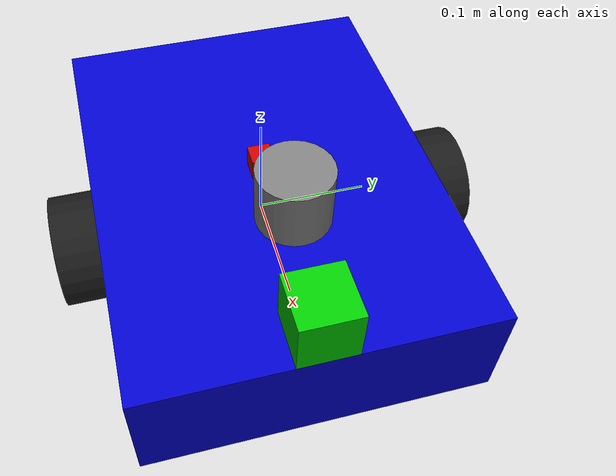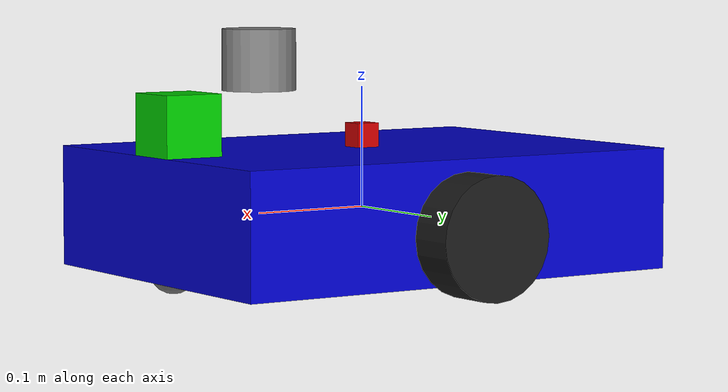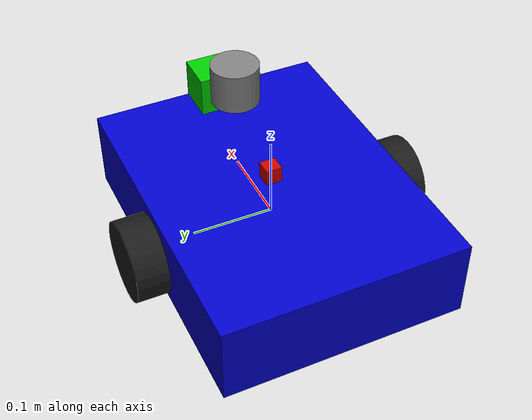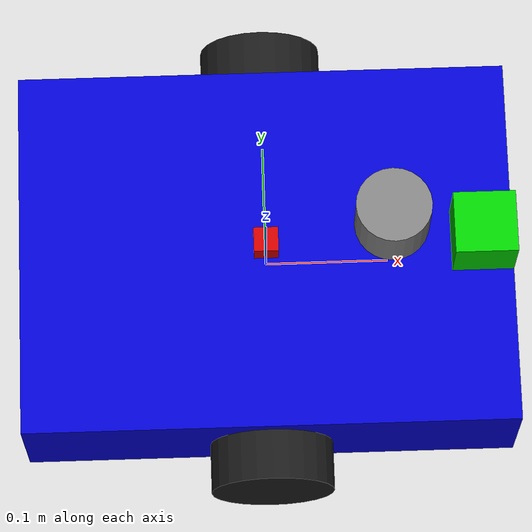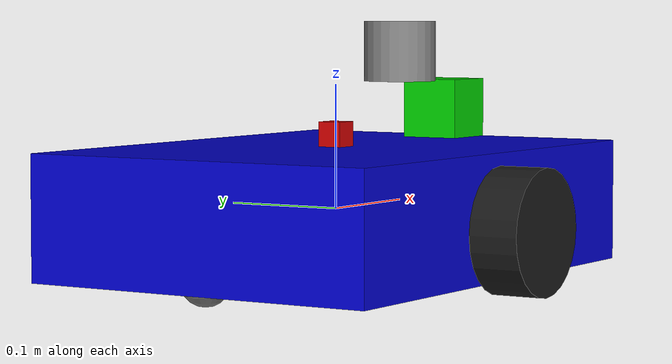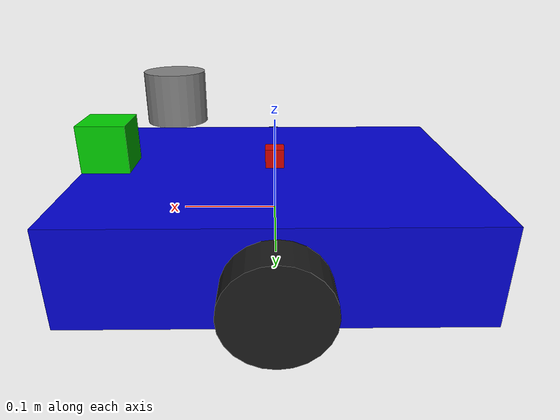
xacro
<?xml version="1.0"?>
<robot xmlns:xacro="http://www.ros.org/wiki/xacro" name="diff_drive_robot">

    <!-- Constants -->
    <xacro:property name="M_PI" value="3.1415926535897931" />
    <xacro:property name="base_width" value="0.3"/>
    <xacro:property name="base_length" value="0.4"/>
    <xacro:property name="base_height" value="0.1"/>
    <xacro:property name="wheel_radius" value="0.05"/>
    <xacro:property name="wheel_width" value="0.04"/>
    <xacro:property name="caster_radius" value="0.02"/>
    <xacro:property name="base_lift" value="0.01"/>
    <xacro:property name="camera_link_size" value="0.05"/>
    <xacro:property name="imu_link_size" value="0.02"/>

    <!-- Base Link -->
    <link name="base_link">
        <visual>
            <geometry>
                <box size="${base_length} ${base_width} ${base_height}"/>
            </geometry>
            <material name="blue">
                <color rgba="0.0 0.0 0.8 1.0"/>
            </material>
        </visual>
        <collision>
            <geometry>
                <box size="${base_length} ${base_width} ${base_height}"/>
            </geometry>
        </collision>
        <inertial>
            <origin xyz="0 0 0" rpy="0 0 0"/>
            <mass value="5.0"/>
            <inertia ixx="0.1" ixy="0.0" ixz="0.0" iyy="0.1" iyz="0.0" izz="0.1"/>
        </inertial>
    </link>

    <!-- IMU Link -->
    <link name="imu_link">
        <visual>
            <geometry>
                <box size="${imu_link_size} ${imu_link_size} ${imu_link_size}"/>
            </geometry>
            <material name="red">
                 <color rgba="0.8 0.0 0.0 1.0"/>
            </material>
        </visual>
         <collision>
            <geometry>
                <box size="${imu_link_size} ${imu_link_size} ${imu_link_size}"/>
            </geometry>
        </collision>
         <inertial>
            <mass value="0.01"/>
            <inertia ixx="1e-6" ixy="0.0" ixz="0.0" iyy="1e-6" iyz="0.0" izz="1e-6"/>
        </inertial>
    </link>

    <joint name="imu_joint" type="fixed">
        <parent link="base_link"/>
        <child link="imu_link"/>
        <origin xyz="0 0 ${base_height/2 + imu_link_size/2}" rpy="0 0 0"/>
    </joint>

    <!-- Camera Link -->
    <link name="camera_link">
        <visual>
            <geometry>
                <box size="${camera_link_size} ${camera_link_size} ${camera_link_size}"/>
            </geometry>
            <material name="green">
                <color rgba="0.0 0.8 0.0 1.0"/>
            </material>
        </visual>
        <collision>
            <geometry>
                <box size="${camera_link_size} ${camera_link_size} ${camera_link_size}"/>
            </geometry>
        </collision>
        <inertial>
             <mass value="0.1"/>
             <inertia ixx="1e-6" ixy="0.0" ixz="0.0" iyy="1e-6" iyz="0.0" izz="1e-6"/>
        </inertial>
    </link>

    <joint name="camera_joint" type="fixed">
        <parent link="base_link"/>
        <child link="camera_link"/>
        <origin xyz="${base_length/2 - camera_link_size/2} 0 ${base_height/2 + camera_link_size/2}" rpy="0 0 0"/>
    </joint>

    <!-- Camera Optical Frame -->
    <link name="camera_depth_optical_frame"/>
    <joint name="camera_optical_joint" type="fixed">
        <parent link="camera_link"/>
        <child link="camera_depth_optical_frame"/>
        <origin xyz="0 0 0" rpy="${-M_PI/2} 0 ${-M_PI/2}"/>
    </joint>
        <!-- *** ADD LASER SCANNER LINK AND JOINT *** -->
    <link name="laser_link">
        <visual>
            <geometry>
                <cylinder radius="0.03" length="0.05"/>
            </geometry>
            <material name="grey">
                <color rgba="0.5 0.5 0.5 1.0"/>
            </material>
        </visual>
        <collision>
            <geometry>
                <cylinder radius="0.03" length="0.05"/>
            </geometry>
        </collision>
        <inertial>
            <mass value="0.1"/>
            <inertia ixx="1e-6" ixy="0.0" ixz="0.0" iyy="1e-6" iyz="0.0" izz="1e-6"/>
        </inertial>
    </link>

    <joint name="laser_joint" type="fixed">
        <parent link="base_link"/>
        <child link="laser_link"/>
        <!-- Position the laser slightly ahead of the base center and above it -->
        <origin xyz="${base_length/4} 0 ${base_height + 0.025}" rpy="0 0 0"/>
    </joint>
    <!-- *** END LASER SCANNER LINK AND JOINT *** -->
    <!-- Wheels -->
    <xacro:macro name="wheel" params="prefix reflect">
        <link name="${prefix}_wheel_link">
            <visual>
                <origin xyz="0 0 0" rpy="${M_PI/2} 0 0"/>
                <geometry>
                    <cylinder radius="${wheel_radius}" length="${wheel_width}"/>
                </geometry>
                <material name="black">
                    <color rgba="0.1 0.1 0.1 1.0"/>
                </material>
            </visual>
            <collision>
                 <origin xyz="0 0 0" rpy="${M_PI/2} 0 0"/>
                <geometry>
                    <cylinder radius="${wheel_radius}" length="${wheel_width}"/>
                </geometry>
            </collision>
             <inertial>
                <mass value="1.0"/>
                <inertia ixx="0.01" ixy="0.0" ixz="0.0" iyy="0.01" iyz="0.0" izz="0.01"/>
            </inertial>
        </link>

        <joint name="${prefix}_wheel_joint" type="continuous">
            <parent link="base_link"/>
            <child link="${prefix}_wheel_link"/>
            <origin xyz="0 ${reflect*(base_width/2 + wheel_width/2)} ${-(base_height/2) + wheel_radius - base_lift}" rpy="0 0 0"/>
            <axis xyz="0 1 0"/>
        </joint>
    </xacro:macro>

    <xacro:wheel prefix="left" reflect="1"/>
    <xacro:wheel prefix="right" reflect="-1"/>

    <!-- Casters -->
    <xacro:macro name="caster" params="prefix x_offset">
        <link name="${prefix}_caster_link">
            <visual>
                <geometry>
                    <sphere radius="${caster_radius}"/>
                </geometry>
                <material name="grey">
                    <color rgba="0.5 0.5 0.5 1.0"/>
                </material>
            </visual>
            <collision>
                <geometry>
                    <sphere radius="${caster_radius}"/>
                </geometry>
                <surface>
                    <friction>
                        <ode>
                            <mu>0.0</mu>
                            <mu2>0.0</mu2>
                            <slip1>1.0</slip1>
                            <slip2>1.0</slip2>
                        </ode>
                    </friction>
                </surface>
            </collision>
            <inertial>
                <mass value="0.5"/>
                <inertia ixx="0.001" ixy="0.0" ixz="0.0" iyy="0.001" iyz="0.0" izz="0.001"/>
            </inertial>
        </link>

        <joint name="${prefix}_caster_joint" type="fixed">
            <parent link="base_link"/>
            <child link="${prefix}_caster_link"/>
            <origin xyz="${x_offset} 0 ${-(base_height/2) + caster_radius - base_lift}" rpy="0 0 0"/>
        </joint>

        <gazebo reference="${prefix}_caster_link">
            <material>Gazebo/Grey</material>
            <mu1>0.0</mu1>
            <mu2>0.0</mu2>
            <slip1>1.0</slip1>
            <slip2>1.0</slip2>
        </gazebo>
    </xacro:macro>

    <xacro:caster prefix="front" x_offset="${base_length/2 - caster_radius}"/>
    <xacro:caster prefix="rear" x_offset="${-base_length/2 + caster_radius}"/>

    <!-- Gazebo Plugins -->
    <gazebo reference="base_link">
        <material>Gazebo/Blue</material>
    </gazebo>
    <gazebo reference="imu_link">
         <material>Gazebo/Red</material>
    </gazebo>
     <gazebo reference="camera_link">
         <material>Gazebo/Green</material>
    </gazebo>
    <gazebo reference="left_wheel_link">
        <material>Gazebo/Black</material>
    </gazebo>
    <gazebo reference="right_wheel_link">
        <material>Gazebo/Black</material>
    </gazebo>

    <!-- Differential Drive Plugin -->
    <gazebo>
        <plugin name="differential_drive_controller" filename="libgazebo_ros_diff_drive.so">
            <ros>
                <!-- Namespace is empty -->
            </ros>
            <update_rate>100</update_rate>
            <!-- wheels -->
            <left_joint>left_wheel_joint</left_joint>
            <right_joint>right_wheel_joint</right_joint>
            <!-- kinematics -->
            <wheel_separation>${base_width + wheel_width}</wheel_separation>
            <wheel_diameter>${2*wheel_radius}</wheel_diameter>
            <!-- limits -->
            <max_wheel_torque>20</max_wheel_torque>
            <max_wheel_acceleration>1.0</max_wheel_acceleration>
            <!-- output -->
            <odometry_frame>odom</odometry_frame>
            <robot_base_frame>base_link</robot_base_frame>
            <publish_odom>true</publish_odom>
            <publish_odom_tf>true</publish_odom_tf>
            <publish_wheel_tf>true</publish_wheel_tf>
            <publish_joint_states>true</publish_joint_states>
            <publish_tf>true</publish_tf>
        </plugin>
    </gazebo>

    <!-- IMU Plugin -->
    <gazebo reference="imu_link">
        <sensor name="imu_sensor" type="imu">
            <always_on>true</always_on>
            <update_rate>100</update_rate>
            <visualize>false</visualize>
            <plugin name="imu_plugin" filename="libgazebo_ros_imu_sensor.so">
                <ros>
                    <remapping>~/out:=imu/data</remapping>
                </ros>
                <initial_orientation_as_reference>false</initial_orientation_as_reference>
                <frame_name>imu_link</frame_name>
            </plugin>
            <pose>0 0 0 0 0 0</pose>
        </sensor>
    </gazebo>

    <!-- RGBD Camera Plugin -->
    <gazebo reference="camera_link">
        <sensor type="depth" name="camera">
            <always_on>true</always_on>
            <update_rate>20.0</update_rate>
            <camera name="sim_camera">
                <horizontal_fov>${60.0*M_PI/180.0}</horizontal_fov>
                <image>
                    <width>640</width>
                    <height>480</height>
                    <format>R8G8B8</format>
                </image>
                <clip>
                    <near>0.1</near>
                    <far>10.0</far>
                </clip>
                <noise>
                    <type>gaussian</type>
                    <mean>0.0</mean>
                    <stddev>0.007</stddev>
                </noise>
            </camera>
            <plugin name="camera_plugin" filename="libgazebo_ros_camera.so">
                <ros>
                    <remapping>image_raw:=rgb/image_rect_color</remapping>
                    <remapping>depth/image_raw:=depth/image_rect_raw</remapping>
                    <remapping>camera_info:=rgb/camera_info</remapping>
                    <remapping>depth/camera_info:=depth/camera_info</remapping>
                    <remapping>points:=depth/color/points</remapping>
                </ros>
                <camera_name>camera</camera_name>
                <frame_name>camera_depth_optical_frame</frame_name>
                <min_depth>0.1</min_depth>
                <max_depth>10.0</max_depth>
                <hack_baseline>0.0</hack_baseline>
            </plugin>
        </sensor>
    </gazebo>

<!-- *** ADD LASER SCANNER PLUGIN *** -->
    <gazebo reference="laser_link">
        <sensor type="ray" name="laser_sensor">
            <pose>0 0 0 0 0 0</pose>
            <visualize>true</visualize> <!-- Set to true to see rays in Gazebo -->
            <update_rate>10</update_rate> <!-- Scan rate Hz -->
            <ray>
                <scan>
                    <horizontal>
                        <samples>360</samples> <!-- Number of rays per scan -->
                        <resolution>1</resolution> <!-- Should be 1 -->
                        <min_angle>-${M_PI}</min_angle> <!-- -180 degrees -->
                        <max_angle>${M_PI}</max_angle>  <!-- +180 degrees -->
                    </horizontal>
                </scan>
                <range>
                    <min>0.10</min> <!-- Minimum range -->
                    <max>12.0</max> <!-- Maximum range -->
                    <resolution>0.01</resolution> <!-- Range resolution -->
                </range>
                <noise>
                    <type>gaussian</type>
                    <mean>0.0</mean>
                    <stddev>0.01</stddev>
                </noise>
            </ray>
            <plugin name="gazebo_ros_laser_controller" filename="libgazebo_ros_ray_sensor.so">
                <ros>
                    <!-- Use 'scan' as the topic name -->
                    <remapping>~/out:=scan</remapping>
                </ros>
                <!-- Set the frame ID to the laser link -->
                <frame_name>laser_link</frame_name>
                <!-- Set output type to LaserScan -->
                <output_type>sensor_msgs/LaserScan</output_type>
            </plugin>
        </sensor>
    </gazebo>
    <!-- *** END LASER SCANNER PLUGIN *** -->

</robot>
